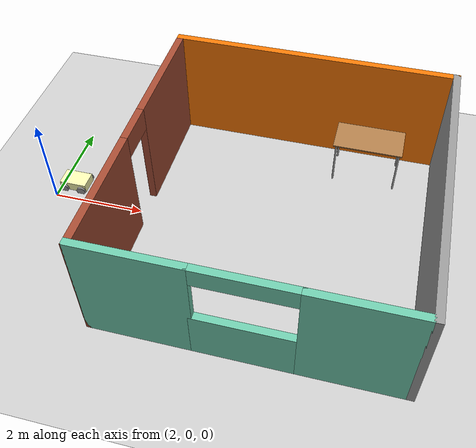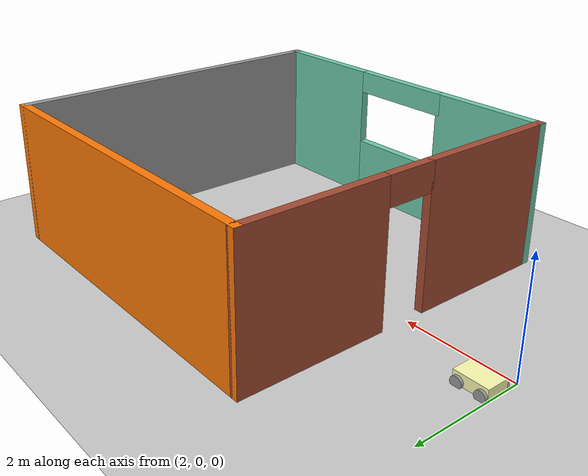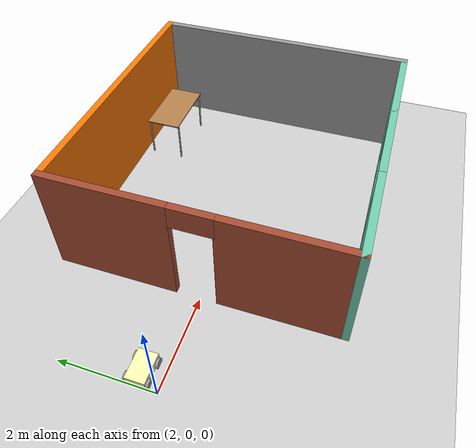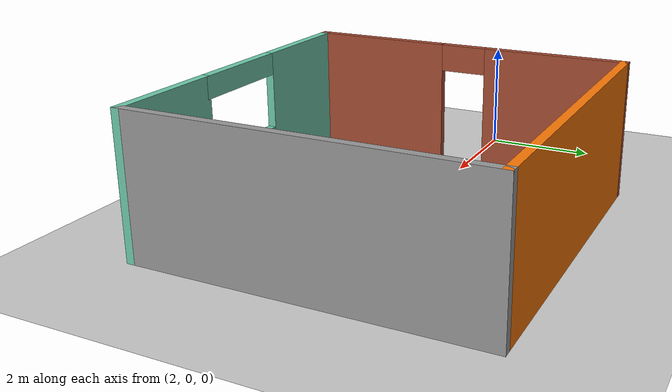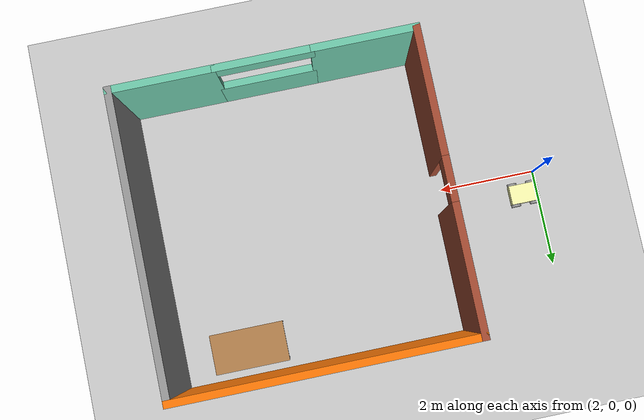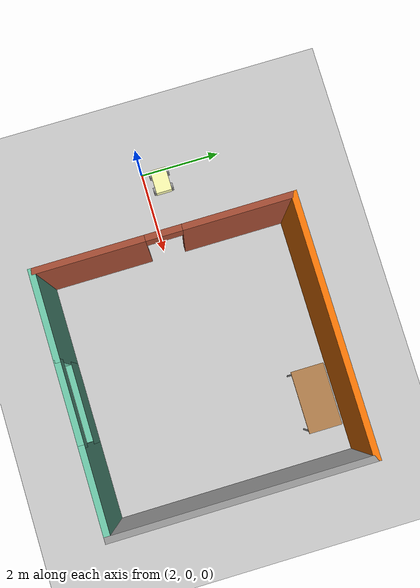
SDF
<sdf version="1.6">
 <world name="default">
  <model name="ground_plane">
   <static>1</static>
   <link name="link">
    <collision name="collision">
     <geometry><plane><normal>0 0 1</normal><size>100 100</size></plane></geometry>
     <surface><friction><ode><mu>100</mu><mu2>50</mu2></ode></friction></surface>
    </collision>
    <visual name="visual">
     <cast_shadows>0</cast_shadows>
     <geometry><plane><normal>0 0 1</normal><size>100 100</size></plane></geometry>
     <material>
      <script><uri>file://media/materials/scripts/gazebo.material</uri><name>Gazebo/Grey</name></script>
     </material>
    </visual>
   </link>
  </model>
  <model name="basic-building_2">
   <pose>7.09913 0.086477 0 0 0 -3.14012</pose>
   <link name="Wall_0">
    <pose>0 3 0 0 -0 0</pose>
    <visual name="Wall_0_Visual_0">
     <pose>-2 0 1.25 0 -0 0</pose>
     <geometry><box><size>2.15 0.15 2.5</size></box></geometry>
     <material>
      <script><uri>file://media/materials/scripts/gazebo.material</uri><name>Gazebo/Grey</name></script>
      <ambient>0.435294 0.796078 0.67451 1</ambient>
     </material>
     <meta><layer>0</layer></meta>
    </visual>
    <collision name="Wall_0_Collision_0">
     <pose>-2 0 1.25 0 -0 0</pose>
     <geometry><box><size>2.15 0.15 2.5</size></box></geometry>
    </collision>
    <visual name="Wall_0_Visual_1">
     <pose>2 0 1.25 0 -0 0</pose>
     <geometry><box><size>2.15 0.15 2.5</size></box></geometry>
     <material>
      <script><uri>file://media/materials/scripts/gazebo.material</uri><name>Gazebo/Grey</name></script>
      <ambient>0.435294 0.796078 0.67451 1</ambient>
     </material>
     <meta><layer>0</layer></meta>
    </visual>
    <collision name="Wall_0_Collision_1">
     <pose>2 0 1.25 0 -0 0</pose>
     <geometry><box><size>2.15 0.15 2.5</size></box></geometry>
    </collision>
    <visual name="Wall_0_Visual_2">
     <pose>0 0 0.55 0 -0 0</pose>
     <geometry><box><size>2 0.15 1.1</size></box></geometry>
     <material>
      <script><uri>file://media/materials/scripts/gazebo.material</uri><name>Gazebo/Grey</name></script>
      <ambient>0.435294 0.796078 0.67451 1</ambient>
     </material>
     <meta><layer>0</layer></meta>
    </visual>
    <collision name="Wall_0_Collision_2">
     <pose>0 0 0.55 0 -0 0</pose>
     <geometry><box><size>2 0.15 1.1</size></box></geometry>
    </collision>
    <visual name="Wall_0_Visual_3">
     <pose>0 0 2.3 0 -0 0</pose>
     <geometry><box><size>2 0.15 0.4</size></box></geometry>
     <material>
      <script><uri>file://media/materials/scripts/gazebo.material</uri><name>Gazebo/Grey</name></script>
      <ambient>0.435294 0.796078 0.67451 1</ambient>
     </material>
     <meta><layer>0</layer></meta>
    </visual>
    <collision name="Wall_0_Collision_3">
     <pose>0 0 2.3 0 -0 0</pose>
     <geometry><box><size>2 0.15 0.4</size></box></geometry>
    </collision>
   </link>
   <link name="Wall_1">
    <pose>-3 0 0 0 0 -1.5708</pose>
    <collision name="Wall_1_Collision">
     <pose>0 0 3 0 -0 0</pose>
     <geometry><box><size>6.15 0.15 2.5</size></box></geometry>
    </collision>
    <visual name="Wall_1_Visual">
     <pose>0 0 1.25 0 -0 0</pose>
     <geometry><box><size>6.15 0.15 2.5</size></box></geometry>
     <material>
      <script><uri>file://media/materials/scripts/gazebo.material</uri><name>Gazebo/Grey</name></script>
      <ambient>1 1 1 1</ambient>
     </material>
     <meta><layer>0</layer></meta>
    </visual>
   </link>
   <link name="Wall_2">
    <pose>0 -3 0 0 -0 0</pose>
    <collision name="Wall_2_Collision">
     <pose>0 0 1.25 0 -0 0</pose>
     <geometry><box><size>6.15 0.15 2.5</size></box></geometry>
    </collision>
    <visual name="Wall_2_Visual">
     <pose>0 0 1.25 0 -0 0</pose>
     <geometry><box><size>6.15 0.15 2.5</size></box></geometry>
     <material>
      <script><uri>file://media/materials/scripts/gazebo.material</uri><name>Gazebo/Grey</name></script>
      <ambient>0.996078 0.47451 0.0196078 1</ambient>
     </material>
     <meta><layer>0</layer></meta>
    </visual>
   </link>
   <link name="Wall_3">
    <pose>3 0 0 0 -0 1.5708</pose>
    <visual name="Wall_3_Visual_0">
     <pose>-1.75 0 1.25 0 -0 0</pose>
     <geometry><box><size>2.65 0.15 2.5</size></box></geometry>
     <material>
      <script><uri>file://media/materials/scripts/gazebo.material</uri><name>Gazebo/Bricks</name></script>
      <ambient>1 1 1 1</ambient>
     </material>
     <meta><layer>0</layer></meta>
    </visual>
    <collision name="Wall_3_Collision_0">
     <pose>-1.75 0 1.25 0 -0 0</pose>
     <geometry><box><size>2.65 0.15 2.5</size></box></geometry>
    </collision>
    <visual name="Wall_3_Visual_1">
     <pose>1.75 0 1.25 0 -0 0</pose>
     <geometry><box><size>2.65 0.15 2.5</size></box></geometry>
     <material>
      <script><uri>file://media/materials/scripts/gazebo.material</uri><name>Gazebo/Bricks</name></script>
      <ambient>1 1 1 1</ambient>
     </material>
     <meta><layer>0</layer></meta>
    </visual>
    <collision name="Wall_3_Collision_1">
     <pose>1.75 0 1.25 0 -0 0</pose>
     <geometry><box><size>2.65 0.15 2.5</size></box></geometry>
    </collision>
    <visual name="Wall_3_Visual_2">
     <pose>0.015 0 2.25 0 -0 0</pose>
     <geometry><box><size>0.9 0.15 0.5</size></box></geometry>
     <material>
      <script><uri>file://media/materials/scripts/gazebo.material</uri><name>Gazebo/Bricks</name></script>
      <ambient>1 1 1 1</ambient>
     </material>
     <meta><layer>0</layer></meta>
    </visual>
    <collision name="Wall_3_Collision_2">
     <geometry><box><size>0.9 0.15 0.5</size></box></geometry>
     <pose>0.015 0 2.25 0 -0 0</pose>
    </collision>
   </link>
   <static>1</static>
  </model>
  <model name="my_bot">
   <link name="link_0">
    <pose>0 -0 0.1 0 -0 0</pose>
    <inertial>
     <mass>1</mass>
     <inertia>
      <ixx>0.166667</ixx>
      <ixy>0</ixy>
      <ixz>0</ixz>
      <iyy>0.166667</iyy>
      <iyz>0</iyz>
      <izz>0.166667</izz>
     </inertia>
    </inertial>
    <visual name="visual">
     <geometry><box><size>0.6 0.4 0.2</size></box></geometry>
     <material>
      <lighting>1</lighting>
      <script><uri>file://media/materials/scripts/gazebo.material</uri><name>Gazebo/Grey</name></script>
      <shader type="pixel"><normal_map>__default__</normal_map></shader>
      <ambient>1 0.3 0.3 1</ambient>
      <diffuse>1 1 0.7 1</diffuse>
      <specular>1 0.01 0.01 1</specular>
      <emissive>1 0 0 1</emissive>
     </material>
    </visual>
    <collision name="collision">
     <geometry><box><size>0.6 0.4 0.2</size></box></geometry>
     <surface>
      <friction>
       <ode><mu>1</mu><mu2>1</mu2><fdir1>0 0 0</fdir1><slip1>0</slip1><slip2>0</slip2></ode>
       <torsional>
        <coefficient>1</coefficient>
        <patch_radius>0</patch_radius>
        <surface_radius>0</surface_radius>
        <use_patch_radius>1</use_patch_radius>
        <ode><slip>0</slip></ode>
       </torsional>
      </friction>
      <bounce><restitution_coefficient>0</restitution_coefficient><threshold>1e+06</threshold></bounce>
      <contact>
       <collide_without_contact>0</collide_without_contact>
       <collide_without_contact_bitmask>1</collide_without_contact_bitmask>
       <collide_bitmask>1</collide_bitmask>
       <ode>
        <soft_cfm>0</soft_cfm>
        <soft_erp>0.2</soft_erp>
        <kp>1e+13</kp>
        <kd>1</kd>
        <max_vel>0.01</max_vel>
        <min_depth>0</min_depth>
       </ode>
       <bullet>
        <split_impulse>1</split_impulse>
        <split_impulse_penetration_threshold>-0.01</split_impulse_penetration_threshold>
        <soft_cfm>0</soft_cfm>
        <soft_erp>0.2</soft_erp>
        <kp>1e+13</kp>
        <kd>1</kd>
       </bullet>
      </contact>
     </surface>
    </collision>
   </link>
   <link name="link_0_0">
    <pose>-0.2 -0.225 0.05 1.5708 -0 0</pose>
    <inertial>
     <mass>1</mass>
     <inertia><ixx>0.145833</ixx><ixy>0</ixy><ixz>0</ixz><iyy>0.145833</iyy><iyz>0</iyz><izz>0.125</izz></inertia>
    </inertial>
    <visual name="visual">
     <geometry><cylinder><radius>0.1</radius><length>0.05</length></cylinder></geometry>
     <material>
      <lighting>1</lighting>
      <script><uri>file://media/materials/scripts/gazebo.material</uri><name>Gazebo/Grey</name></script>
      <shader type="pixel"><normal_map>__default__</normal_map></shader>
      <ambient>0.3 0.3 0.3 1</ambient>
      <diffuse>0.7 0.7 0.7 1</diffuse>
      <specular>0.01 0.01 0.01 1</specular>
      <emissive>0 0 0 1</emissive>
     </material>
    </visual>
    <collision name="collision">
     <geometry><cylinder><radius>0.1</radius><length>0.05</length></cylinder></geometry>
     <surface>
      <friction>
       <ode><mu>1</mu><mu2>1</mu2><fdir1>0 0 0</fdir1><slip1>0</slip1><slip2>0</slip2></ode>
       <torsional>
        <coefficient>1</coefficient>
        <patch_radius>0</patch_radius>
        <surface_radius>0</surface_radius>
        <use_patch_radius>1</use_patch_radius>
        <ode><slip>0</slip></ode>
       </torsional>
      </friction>
      <bounce><restitution_coefficient>0</restitution_coefficient><threshold>1e+06</threshold></bounce>
      <contact>
       <collide_without_contact>0</collide_without_contact>
       <collide_without_contact_bitmask>1</collide_without_contact_bitmask>
       <collide_bitmask>1</collide_bitmask>
       <ode>
        <soft_cfm>0</soft_cfm>
        <soft_erp>0.2</soft_erp>
        <kp>1e+13</kp>
        <kd>1</kd>
        <max_vel>0.01</max_vel>
        <min_depth>0</min_depth>
       </ode>
       <bullet>
        <split_impulse>1</split_impulse>
        <split_impulse_penetration_threshold>-0.01</split_impulse_penetration_threshold>
        <soft_cfm>0</soft_cfm>
        <soft_erp>0.2</soft_erp>
        <kp>1e+13</kp>
        <kd>1</kd>
       </bullet>
      </contact>
     </surface>
    </collision>
   </link>
   <link name="link_0_0_clone">
    <pose>-0.2 0.225 0.05 1.5708 -0 0</pose>
    <inertial>
     <mass>1</mass>
     <inertia><ixx>0.145833</ixx><ixy>0</ixy><ixz>0</ixz><iyy>0.145833</iyy><iyz>0</iyz><izz>0.125</izz></inertia>
    </inertial>
    <visual name="visual_0">
     <geometry><cylinder><radius>0.1</radius><length>0.05</length></cylinder></geometry>
     <material>
      <lighting>1</lighting>
      <script><uri>file://media/materials/scripts/gazebo.material</uri><name>Gazebo/Grey</name></script>
      <shader type="pixel"><normal_map>__default__</normal_map></shader>
      <ambient>0.3 0.3 0.3 1</ambient>
      <diffuse>0.7 0.7 0.7 1</diffuse>
      <specular>0.01 0.01 0.01 1</specular>
      <emissive>0 0 0 1</emissive>
     </material>
    </visual>
    <collision name="collision">
     <geometry><cylinder><radius>0.1</radius><length>0.05</length></cylinder></geometry>
     <surface>
      <friction>
       <ode><mu>1</mu><mu2>1</mu2><fdir1>0 0 0</fdir1><slip1>0</slip1><slip2>0</slip2></ode>
       <torsional>
        <coefficient>1</coefficient>
        <patch_radius>0</patch_radius>
        <surface_radius>0</surface_radius>
        <use_patch_radius>1</use_patch_radius>
        <ode><slip>0</slip></ode>
       </torsional>
      </friction>
      <bounce><restitution_coefficient>0</restitution_coefficient><threshold>1e+06</threshold></bounce>
      <contact>
       <collide_without_contact>0</collide_without_contact>
       <collide_without_contact_bitmask>1</collide_without_contact_bitmask>
       <collide_bitmask>1</collide_bitmask>
       <ode>
        <soft_cfm>0</soft_cfm>
        <soft_erp>0.2</soft_erp>
        <kp>1e+13</kp>
        <kd>1</kd>
        <max_vel>0.01</max_vel>
        <min_depth>0</min_depth>
       </ode>
       <bullet>
        <split_impulse>1</split_impulse>
        <split_impulse_penetration_threshold>-0.01</split_impulse_penetration_threshold>
        <soft_cfm>0</soft_cfm>
        <soft_erp>0.2</soft_erp>
        <kp>1e+13</kp>
        <kd>1</kd>
       </bullet>
      </contact>
     </surface>
    </collision>
   </link>
   <link name="link_0_0_clone_0">
    <pose>0.2 0.225 0.05 1.5708 -0 0</pose>
    <inertial>
     <mass>1</mass>
     <inertia><ixx>0.145833</ixx><ixy>0</ixy><ixz>0</ixz><iyy>0.145833</iyy><iyz>0</iyz><izz>0.125</izz></inertia>
    </inertial>
    <visual name="visual_0">
     <geometry><cylinder><radius>0.1</radius><length>0.05</length></cylinder></geometry>
     <material>
      <lighting>1</lighting>
      <script><uri>file://media/materials/scripts/gazebo.material</uri><name>Gazebo/Grey</name></script>
      <shader type="pixel"><normal_map>__default__</normal_map></shader>
      <ambient>0.3 0.3 0.3 1</ambient>
      <diffuse>0.7 0.7 0.7 1</diffuse>
      <specular>0.01 0.01 0.01 1</specular>
      <emissive>0 0 0 1</emissive>
     </material>
    </visual>
    <collision name="collision">
     <geometry><cylinder><radius>0.1</radius><length>0.05</length></cylinder></geometry>
     <surface>
      <friction>
       <ode><mu>1</mu><mu2>1</mu2><fdir1>0 0 0</fdir1><slip1>0</slip1><slip2>0</slip2></ode>
       <torsional>
        <coefficient>1</coefficient>
        <patch_radius>0</patch_radius>
        <surface_radius>0</surface_radius>
        <use_patch_radius>1</use_patch_radius>
        <ode><slip>0</slip></ode>
       </torsional>
      </friction>
      <bounce><restitution_coefficient>0</restitution_coefficient><threshold>1e+06</threshold></bounce>
      <contact>
       <collide_without_contact>0</collide_without_contact>
       <collide_without_contact_bitmask>1</collide_without_contact_bitmask>
       <collide_bitmask>1</collide_bitmask>
       <ode>
        <soft_cfm>0</soft_cfm>
        <soft_erp>0.2</soft_erp>
        <kp>1e+13</kp>
        <kd>1</kd>
        <max_vel>0.01</max_vel>
        <min_depth>0</min_depth>
       </ode>
       <bullet>
        <split_impulse>1</split_impulse>
        <split_impulse_penetration_threshold>-0.01</split_impulse_penetration_threshold>
        <soft_cfm>0</soft_cfm>
        <soft_erp>0.2</soft_erp>
        <kp>1e+13</kp>
        <kd>1</kd>
       </bullet>
      </contact>
     </surface>
    </collision>
   </link>
   <link name="link_0_0_clone_1">
    <pose>0.2 -0.225 0.05 1.5708 -0 0</pose>
    <inertial>
     <mass>1</mass>
     <inertia><ixx>0.145833</ixx><ixy>0</ixy><ixz>0</ixz><iyy>0.145833</iyy><iyz>0</iyz><izz>0.125</izz></inertia>
    </inertial>
    <visual name="visual_0">
     <geometry><cylinder><radius>0.1</radius><length>0.05</length></cylinder></geometry>
     <material>
      <lighting>1</lighting>
      <script><uri>file://media/materials/scripts/gazebo.material</uri><name>Gazebo/Grey</name></script>
      <shader type="pixel"><normal_map>__default__</normal_map></shader>
      <ambient>0.3 0.3 0.3 1</ambient>
      <diffuse>0.7 0.7 0.7 1</diffuse>
      <specular>0.01 0.01 0.01 1</specular>
      <emissive>0 0 0 1</emissive>
     </material>
    </visual>
    <collision name="collision">
     <geometry><cylinder><radius>0.1</radius><length>0.05</length></cylinder></geometry>
     <surface>
      <friction>
       <ode><mu>1</mu><mu2>1</mu2><fdir1>0 0 0</fdir1><slip1>0</slip1><slip2>0</slip2></ode>
       <torsional>
        <coefficient>1</coefficient>
        <patch_radius>0</patch_radius>
        <surface_radius>0</surface_radius>
        <use_patch_radius>1</use_patch_radius>
        <ode><slip>0</slip></ode>
       </torsional>
      </friction>
      <bounce><restitution_coefficient>0</restitution_coefficient><threshold>1e+06</threshold></bounce>
      <contact>
       <collide_without_contact>0</collide_without_contact>
       <collide_without_contact_bitmask>1</collide_without_contact_bitmask>
       <collide_bitmask>1</collide_bitmask>
       <ode>
        <soft_cfm>0</soft_cfm>
        <soft_erp>0.2</soft_erp>
        <kp>1e+13</kp>
        <kd>1</kd>
        <max_vel>0.01</max_vel>
        <min_depth>0</min_depth>
       </ode>
       <bullet>
        <split_impulse>1</split_impulse>
        <split_impulse_penetration_threshold>-0.01</split_impulse_penetration_threshold>
        <soft_cfm>0</soft_cfm>
        <soft_erp>0.2</soft_erp>
        <kp>1e+13</kp>
        <kd>1</kd>
       </bullet>
      </contact>
     </surface>
    </collision>
   </link>
   <joint name="link_0_JOINT_0" type="revolute">
    <parent>link_0</parent>
    <child>link_0_0</child>
    <axis>
     <xyz>1 0 0</xyz>
     <use_parent_model_frame>0</use_parent_model_frame>
     <limit>
      <lower>-1.79769e+308</lower>
      <upper>1.79769e+308</upper>
      <effort>-1</effort>
      <velocity>-1</velocity>
     </limit>
     <dynamics>
      <spring_reference>0</spring_reference>
      <spring_stiffness>0</spring_stiffness>
      <damping>0</damping>
      <friction>0</friction>
     </dynamics>
    </axis>
    <physics>
     <ode><limit><cfm>0</cfm><erp>0.2</erp></limit><suspension><cfm>0</cfm><erp>0.2</erp></suspension></ode>
    </physics>
   </joint>
   <joint name="link_0_JOINT_1" type="revolute">
    <parent>link_0</parent>
    <child>link_0_0_clone</child>
    <axis>
     <xyz>1 0 0</xyz>
     <use_parent_model_frame>0</use_parent_model_frame>
     <limit>
      <lower>-1.79769e+308</lower>
      <upper>1.79769e+308</upper>
      <effort>-1</effort>
      <velocity>-1</velocity>
     </limit>
     <dynamics>
      <spring_reference>0</spring_reference>
      <spring_stiffness>0</spring_stiffness>
      <damping>0</damping>
      <friction>0</friction>
     </dynamics>
    </axis>
    <physics>
     <ode><limit><cfm>0</cfm><erp>0.2</erp></limit><suspension><cfm>0</cfm><erp>0.2</erp></suspension></ode>
    </physics>
   </joint>
   <joint name="link_0_JOINT_2" type="revolute">
    <parent>link_0</parent>
    <child>link_0_0_clone_0</child>
    <axis>
     <xyz>1 0 0</xyz>
     <use_parent_model_frame>0</use_parent_model_frame>
     <limit>
      <lower>-1.79769e+308</lower>
      <upper>1.79769e+308</upper>
      <effort>-1</effort>
      <velocity>-1</velocity>
     </limit>
     <dynamics>
      <spring_reference>0</spring_reference>
      <spring_stiffness>0</spring_stiffness>
      <damping>0</damping>
      <friction>0</friction>
     </dynamics>
    </axis>
    <physics>
     <ode><limit><cfm>0</cfm><erp>0.2</erp></limit><suspension><cfm>0</cfm><erp>0.2</erp></suspension></ode>
    </physics>
   </joint>
   <joint name="link_0_JOINT_3" type="revolute">
    <parent>link_0</parent>
    <child>link_0_0_clone_1</child>
    <axis>
     <xyz>1 0 0</xyz>
     <use_parent_model_frame>0</use_parent_model_frame>
     <limit>
      <lower>-1.79769e+308</lower>
      <upper>1.79769e+308</upper>
      <effort>-1</effort>
      <velocity>-1</velocity>
     </limit>
     <dynamics>
      <spring_reference>0</spring_reference>
      <spring_stiffness>0</spring_stiffness>
      <damping>0</damping>
      <friction>0</friction>
     </dynamics>
    </axis>
    <physics>
     <ode><limit><cfm>0</cfm><erp>0.2</erp></limit><suspension><cfm>0</cfm><erp>0.2</erp></suspension></ode>
    </physics>
   </joint>
   <static>0</static>
   <pose>2.30033 0.429279 0 0 -0 0</pose>
  </model>
  <model name="table">
   <static>1</static>
   <link name="link">
    <collision name="surface">
     <pose>0 0 1 0 -0 0</pose>
     <geometry><box><size>1.5 0.8 0.03</size></box></geometry>
     <surface><friction><ode><mu>0.6</mu><mu2>0.6</mu2></ode></friction></surface>
    </collision>
    <visual name="visual1">
     <pose>0 0 1 0 -0 0</pose>
     <geometry><box><size>1.5 0.8 0.03</size></box></geometry>
     <material>
      <script><uri>file://media/materials/scripts/gazebo.material</uri><name>Gazebo/Wood</name></script>
     </material>
    </visual>
    <collision name="front_left_leg">
     <pose>0.68 0.38 0.5 0 -0 0</pose>
     <geometry><cylinder><radius>0.02</radius><length>1</length></cylinder></geometry>
    </collision>
    <visual name="front_left_leg">
     <pose>0.68 0.38 0.5 0 -0 0</pose>
     <geometry><cylinder><radius>0.02</radius><length>1</length></cylinder></geometry>
     <material>
      <script><uri>file://media/materials/scripts/gazebo.material</uri><name>Gazebo/Grey</name></script>
     </material>
    </visual>
    <collision name="front_right_leg">
     <pose>0.68 -0.38 0.5 0 -0 0</pose>
     <geometry><cylinder><radius>0.02</radius><length>1</length></cylinder></geometry>
    </collision>
    <visual name="front_right_leg">
     <pose>0.68 -0.38 0.5 0 -0 0</pose>
     <geometry><cylinder><radius>0.02</radius><length>1</length></cylinder></geometry>
     <material>
      <script><uri>file://media/materials/scripts/gazebo.material</uri><name>Gazebo/Grey</name></script>
     </material>
    </visual>
    <collision name="back_right_leg">
     <pose>-0.68 -0.38 0.5 0 -0 0</pose>
     <geometry><cylinder><radius>0.02</radius><length>1</length></cylinder></geometry>
    </collision>
    <visual name="back_right_leg">
     <pose>-0.68 -0.38 0.5 0 -0 0</pose>
     <geometry><cylinder><radius>0.02</radius><length>1</length></cylinder></geometry>
     <material>
      <script><uri>file://media/materials/scripts/gazebo.material</uri><name>Gazebo/Grey</name></script>
     </material>
    </visual>
    <collision name="back_left_leg">
     <pose>-0.68 0.38 0.5 0 -0 0</pose>
     <geometry><cylinder><radius>0.02</radius><length>1</length></cylinder></geometry>
    </collision>
    <visual name="back_left_leg">
     <pose>-0.68 0.38 0.5 0 -0 0</pose>
     <geometry><cylinder><radius>0.02</radius><length>1</length></cylinder></geometry>
     <material>
      <script><uri>file://media/materials/scripts/gazebo.material</uri><name>Gazebo/Grey</name></script>
     </material>
    </visual>
   </link>
   <pose>8.56292 2.42398 0 0 -0 0</pose>
  </model>
 </world>
</sdf>
